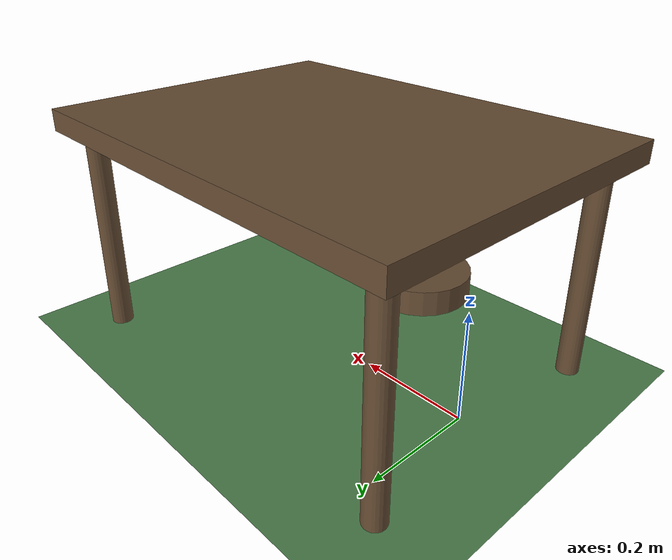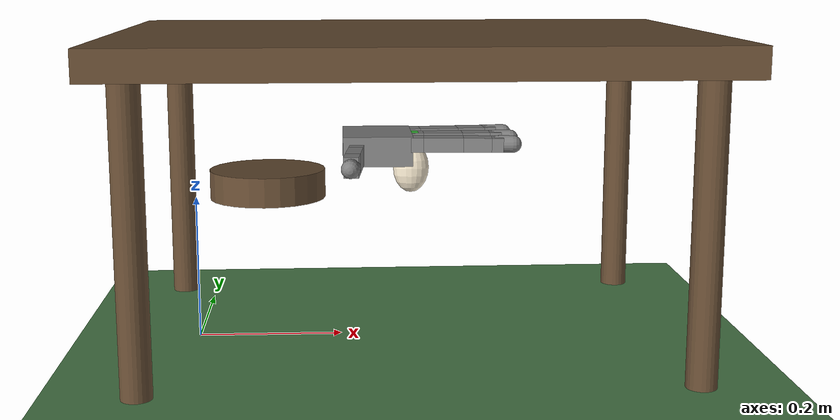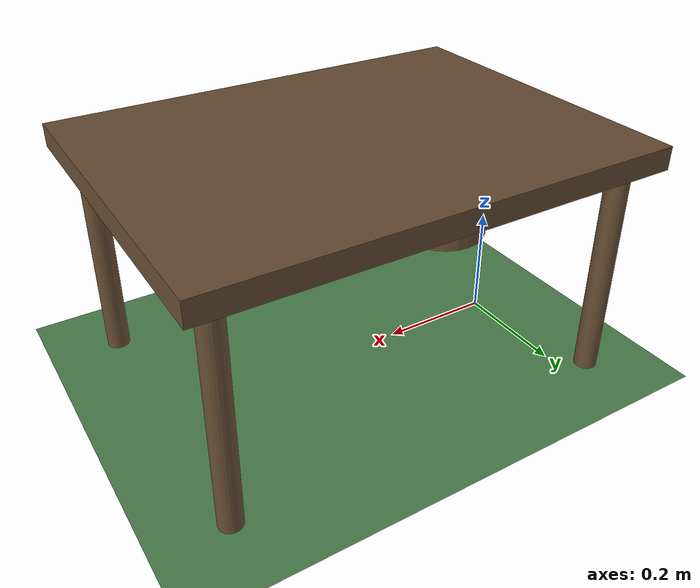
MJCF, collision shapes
<?xml version="1.0" encoding="UTF-8"?>
<mujoco>
  <compiler angle="radian" meshdir="assets" autolimits="true"/>

  <option cone="elliptic" impratio="10"/>
  <option gravity="0 0 -9.81"/>

  <visual>
    <headlight ambient="0.6 0.6 0.6" diffuse="0.4 0.4 0.4" specular="0.1 0.1 0.1"/>
    <map stiffness="300"/>
  </visual>

  <statistic center="0.3 0 0.3" extent="0.8"/>

  <default>
    <default class="allegro_right">
      <joint axis="0 1 0" damping=".1"/>
      <position kp="1"/>
      <geom density="800"/>

      <default class="visual">
        <geom type="mesh" contype="0" conaffinity="0" group="2" material="black"/>
        <default class="palm_visual">
          <geom mesh="base_link"/>
        </default>
        <default class="base_visual">
          <geom mesh="link_0.0"/>
        </default>
        <default class="proximal_visual">
          <geom mesh="link_1.0"/>
        </default>
        <default class="medial_visual">
          <geom mesh="link_2.0"/>
        </default>
        <default class="distal_visual">
          <geom mesh="link_3.0"/>
        </default>
        <default class="fingertip_visual">
          <geom pos="0 0 0.0267" material="white" mesh="link_3.0_tip"/>
        </default>
        <default class="thumbtip_visual">
          <geom pos="0 0 0.0423" material="white" mesh="link_15.0_tip"/>
        </default>
      </default>

      <default class="collision">
        <geom group="3" type="box" mass="0"/>
        <default class="palm_collision">
          <geom size="0.0204 0.0565 0.0475" pos="-0.0093 0 -0.0475"/>
        </default>
        <default class="base_collision">
          <geom size="0.0098 0.01375 0.0082" pos="0 0 0.0082"/>
          <default class="thumb_base_collision">
            <geom size="0.0179 0.017 0.02275" pos="-0.0179 0.009 0.0145"/>
          </default>
        </default>
        <default class="proximal_collision">
          <geom size="0.0098 0.01375 0.027" pos="0 0 0.027"/>
          <default class="thumb_proximal_collision">
            <geom size="0.0098 0.01375 0.00885" pos="0 0 0.00885"/>
          </default>
        </default>
        <default class="medial_collision">
          <geom size="0.0098 0.01375 0.0192" pos="0 0 0.0192"/>
          <default class="thumb_medial_collision">
            <geom size="0.0098 0.01375 0.0257" pos="0 0 0.0257"/>
          </default>
        </default>
        <default class="distal_collision">
          <geom size="0.0098 0.01375 0.008" pos="0 0 0.008"/>
          <default class="thumb_distal_collision">
            <geom size="0.0098 0.01375 0.0157" pos="0 0 0.0157"/>
          </default>
        </default>
        <default class="fingertip_collision">
          <geom type="capsule" size="0.012 0.01" pos="0 0 0.019"/>
          <default class="thumbtip_collision">
            <geom type="capsule" size="0.012 0.008" pos="0 0 0.035"/>
          </default>
        </default>
      </default>

      <default class="base">
        <joint axis="0 0 1" range="-0.47 0.47"/>
        <position ctrlrange="-0.47 0.47"/>
      </default>
      <default class="proximal">
        <joint range="-0.196 1.61"/>
        <position ctrlrange="-0.196 1.61"/>
      </default>
      <default class="medial">
        <joint range="-0.174 1.709"/>
        <position ctrlrange="-0.174 1.709"/>
      </default>
      <default class="distal">
        <joint range="-0.227 1.618"/>
        <position ctrlrange="-0.227 1.618"/>
      </default>
      <default class="thumb_base">
        <joint axis="-1 0 0" range="0.263 1.396"/>
        <position ctrlrange="0.263 1.396"/>
      </default>
      <default class="thumb_proximal">
        <joint axis="0 0 1" range="-0.105 1.163"/>
        <position ctrlrange="-0.105 1.163"/>
      </default>
      <default class="thumb_medial">
        <joint range="-0.189 1.644"/>
        <position ctrlrange="-0.189 1.644"/>
      </default>
      <default class="thumb_distal">
        <joint range="-0.162 1.719"/>
        <position ctrlrange="-0.162 1.719"/>
      </default>
    </default>
  </default>

  <asset>
    <!-- 材质定义 -->
    <material name="black" rgba="0.2 0.2 0.2 1"/>
    <material name="white" rgba="0.9 0.9 0.9 1"/>
    <material name="egg" rgba="0.95 0.9 0.8 1"/>
    <material name="table" rgba="0.4 0.3 0.2 1"/>
    <material name="ground" rgba="0.3 0.5 0.3 1"/>
    <material name="sky" rgba="0.6 0.7 0.8 1"/>

    <!-- Allegro手模型 -->
    <mesh file="base_link.stl"/>
    <mesh file="link_0.0.stl"/>
    <mesh file="link_1.0.stl"/>
    <mesh file="link_2.0.stl"/>
    <mesh file="link_3.0.stl"/>
    <mesh file="link_3.0_tip.stl"/>
    <mesh file="link_12.0_right.stl"/>
    <mesh file="link_13.0.stl"/>
    <mesh file="link_14.0.stl"/>
    <mesh file="link_15.0.stl"/>
    <mesh file="link_15.0_tip.stl"/>
  </asset>

  <worldbody>
    <!-- 地面 -->
    <body name="ground">
      <geom name="ground" type="plane" material="ground" size="2 2 0.1" pos="0 0 0"/>
    </body>

    <!-- 桌子 -->
    <body name="table" pos="0.3 0 0.2">
      <geom name="table_top" type="box" material="table" size="0.4 0.3 0.02" pos="0 0 0.21"/>
      <geom name="table_leg1" type="cylinder" material="table" size="0.02 0.2" pos="0.35 0.25 0"/>
      <geom name="table_leg2" type="cylinder" material="table" size="0.02 0.2" pos="0.35 -0.25 0"/>
      <geom name="table_leg3" type="cylinder" material="table" size="0.02 0.2" pos="-0.35 0.25 0"/>
      <geom name="table_leg4" type="cylinder" material="table" size="0.02 0.2" pos="-0.35 -0.25 0"/>
    </body>

    <!-- 放置平台 -->
    <body name="place_platform" pos="0.1 0 0.22">
      <geom name="platform" type="cylinder" material="table" size="0.08 0.02"/>
    </body>

    <!-- 鸡蛋 -->
    <body name="egg" pos="0.3 0 0.24">
      <inertial pos="0 0 0" mass="0.06" diaginertia="1e-4 1e-4 1e-4"/>
      <geom name="egg" type="ellipsoid" material="egg" size="0.025 0.018 0.035"/>
    </body>

    <!-- Wonik Allegro右手 - 使用 mocap 驱动移动 -->
    <!-- 原位置: pos="0.3 0 0.28" -->
    <!-- 我们将 palm 的 body 绑定到一个 mocap body 上，或者直接给 palm 加 freejoint 并用 mocap site + weld equality 约束 -->
    <!-- 更简单的方法：直接将 palm 设为 mocap body? 不行，mocap body 不能有子关节 -->
    <!-- 方法：创建一个 mocap body，然后通过 weld equality 约束 palm 到 mocap body -->

    <body name="hand_mocap" mocap="true" pos="0.3 0 0.28" quat="0 1 0 1">
        <geom type="box" size="0.01 0.01 0.01" rgba="0 1 0 0.5" contype="0" conaffinity="0"/>
    </body>

    <body name="palm" childclass="allegro_right" pos="0.3 0 0.28" quat="0 1 0 1">
      <freejoint/> <!-- 允许自由移动，受约束控制 -->
      <geom class="palm_visual" mesh="base_link"/>
      <geom class="palm_collision"/>

      <!-- First finger (食指) -->
      <body name="ff_base" pos="0 0.0435 -0.001542" quat="0.999048 -0.0436194 0 0">
        <joint name="ffj0" class="base"/>
        <geom class="base_visual"/>
        <geom class="base_collision"/>
        <body name="ff_proximal" pos="0 0 0.0164">
          <joint name="ffj1" class="proximal"/>
          <geom class="proximal_visual"/>
          <geom class="proximal_collision"/>
          <body name="ff_medial" pos="0 0 0.054">
            <joint name="ffj2" class="medial"/>
            <geom class="medial_visual"/>
            <geom class="medial_collision"/>
            <body name="ff_distal" pos="0 0 0.0384">
              <joint name="ffj3" class="distal"/>
              <geom class="distal_visual"/>
              <geom class="distal_collision"/>
              <body name="ff_tip">
                <geom class="fingertip_visual"/>
                <geom class="fingertip_collision"/>
              </body>
            </body>
          </body>
        </body>
      </body>

      <!-- Middle finger (中指) -->
      <body name="mf_base" pos="0 0 0.0007">
        <joint name="mfj0" class="base"/>
        <geom class="base_visual"/>
        <geom class="base_collision"/>
        <body name="mf_proximal" pos="0 0 0.0164">
          <joint name="mfj1" class="proximal"/>
          <geom class="proximal_visual"/>
          <geom class="proximal_collision"/>
          <body name="mf_medial" pos="0 0 0.054">
            <joint name="mfj2" class="medial"/>
            <geom class="medial_visual"/>
            <geom class="medial_collision"/>
            <body name="mf_distal" pos="0 0 0.0384">
              <joint name="mfj3" class="distal"/>
              <geom class="distal_visual"/>
              <geom class="distal_collision"/>
              <body name="mf_tip">
                <geom class="fingertip_visual"/>
                <geom class="fingertip_collision"/>
              </body>
            </body>
          </body>
        </body>
      </body>

      <!-- Ring finger (无名指) -->
      <body name="rf_base" pos="0 -0.0435 -0.001542" quat="0.999048 0.0436194 0 0">
        <joint name="rfj0" class="base"/>
        <geom class="base_visual"/>
        <geom class="base_collision"/>
        <body name="rf_proximal" pos="0 0 0.0164">
          <joint name="rfj1" class="proximal"/>
          <geom class="proximal_visual"/>
          <geom class="proximal_collision"/>
          <body name="rf_medial" pos="0 0 0.054">
            <joint name="rfj2" class="medial"/>
            <geom class="medial_visual"/>
            <geom class="medial_collision"/>
            <body name="rf_distal" pos="0 0 0.0384">
              <joint name="rfj3" class="distal"/>
              <geom class="distal_visual"/>
              <geom class="distal_collision"/>
              <body name="rf_tip">
                <geom class="fingertip_visual"/>
                <geom class="fingertip_collision"/>
              </body>
            </body>
          </body>
        </body>
      </body>

      <!-- Thumb (拇指) -->
      <body name="th_base" pos="-0.0182 0.019333 -0.045987" quat="0.477714 -0.521334 -0.521334 -0.477714">
        <joint name="thj0" class="thumb_base"/>
        <geom class="visual" mesh="link_12.0_right"/>
        <geom class="thumb_base_collision"/>
        <body name="th_proximal" pos="-0.027 0.005 0.0399">
          <joint name="thj1" class="thumb_proximal"/>
          <geom class="visual" mesh="link_13.0"/>
          <geom class="thumb_proximal_collision"/>
          <body name="th_medial" pos="0 0 0.0177">
            <joint name="thj2" class="thumb_medial"/>
            <geom class="visual" mesh="link_14.0"/>
            <geom class="thumb_medial_collision"/>
            <body name="th_distal" pos="0 0 0.0514">
              <joint name="thj3" class="thumb_distal"/>
              <geom class="visual" mesh="link_15.0"/>
              <geom class="thumb_distal_collision"/>
              <body name="th_tip">
                <geom class="thumbtip_visual"/>
                <geom class="thumbtip_collision"/>
              </body>
            </body>
          </body>
        </body>
      </body>
    </body>
  </worldbody>

  <contact>
    <!-- 排除手内部的碰撞 -->
    <exclude body1="palm" body2="ff_base"/>
    <exclude body1="palm" body2="mf_base"/>
    <exclude body1="palm" body2="rf_base"/>
    <exclude body1="palm" body2="th_base"/>
    <exclude body1="palm" body2="th_proximal"/>
  </contact>

  <actuator>
    <!-- 食指关节 -->
    <position name="ffa0" joint="ffj0" class="base"/>
    <position name="ffa1" joint="ffj1" class="proximal"/>
    <position name="ffa2" joint="ffj2" class="medial"/>
    <position name="ffa3" joint="ffj3" class="distal"/>

    <!-- 中指关节 -->
    <position name="mfa0" joint="mfj0" class="base"/>
    <position name="mfa1" joint="mfj1" class="proximal"/>
    <position name="mfa2" joint="mfj2" class="medial"/>
    <position name="mfa3" joint="mfj3" class="distal"/>

    <!-- 无名指关节 -->
    <position name="rfa0" joint="rfj0" class="base"/>
    <position name="rfa1" joint="rfj1" class="proximal"/>
    <position name="rfa2" joint="rfj2" class="medial"/>
    <position name="rfa3" joint="rfj3" class="distal"/>

    <!-- 拇指关节 -->
    <position name="tha0" joint="thj0" class="thumb_base"/>
    <position name="tha1" joint="thj1" class="thumb_proximal"/>
    <position name="tha2" joint="thj2" class="thumb_medial"/>
    <position name="tha3" joint="thj3" class="thumb_distal"/>
  </actuator>
  <equality>
    <weld body1="hand_mocap" body2="palm" solref="0.01 1" solimp=".9 .9 0.01"/>
  </equality>
</mujoco>
